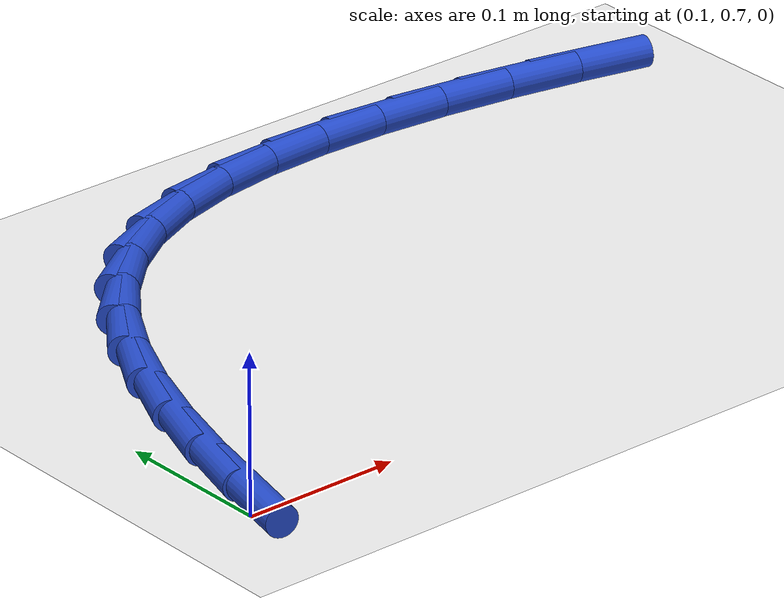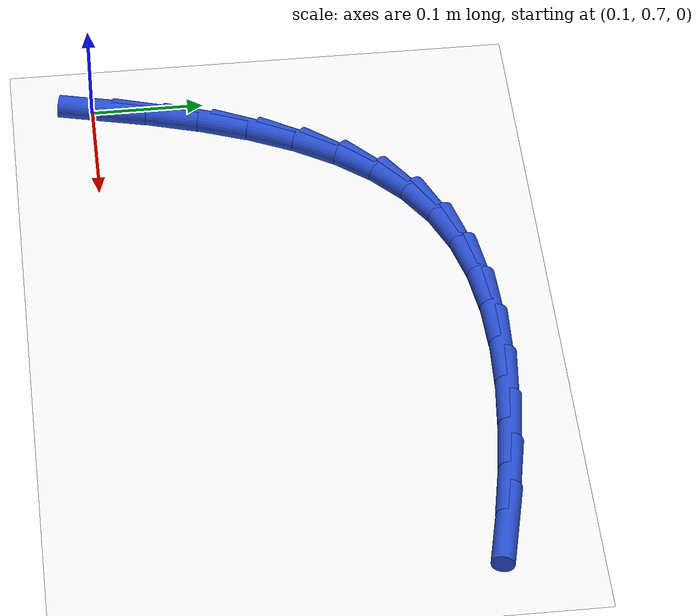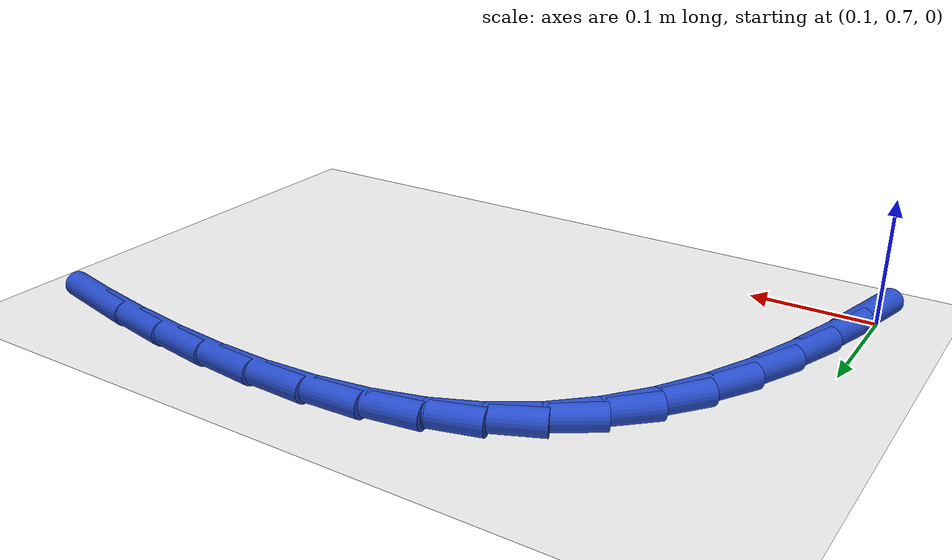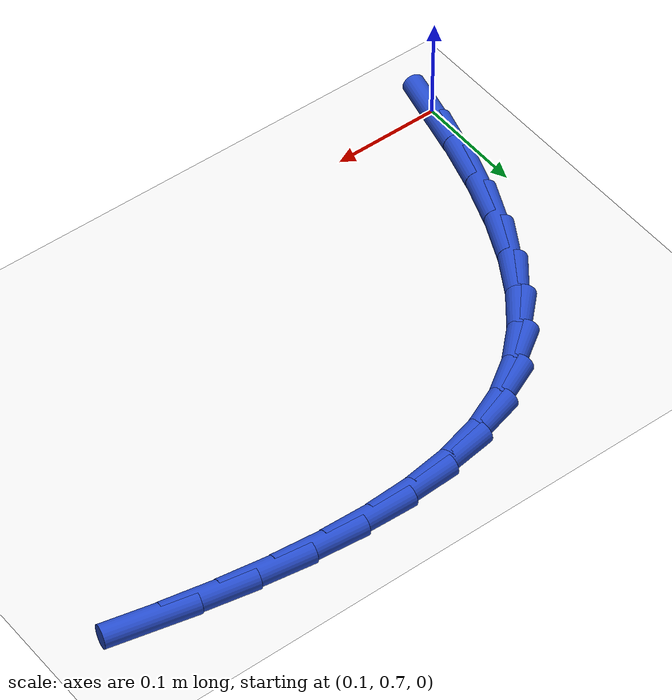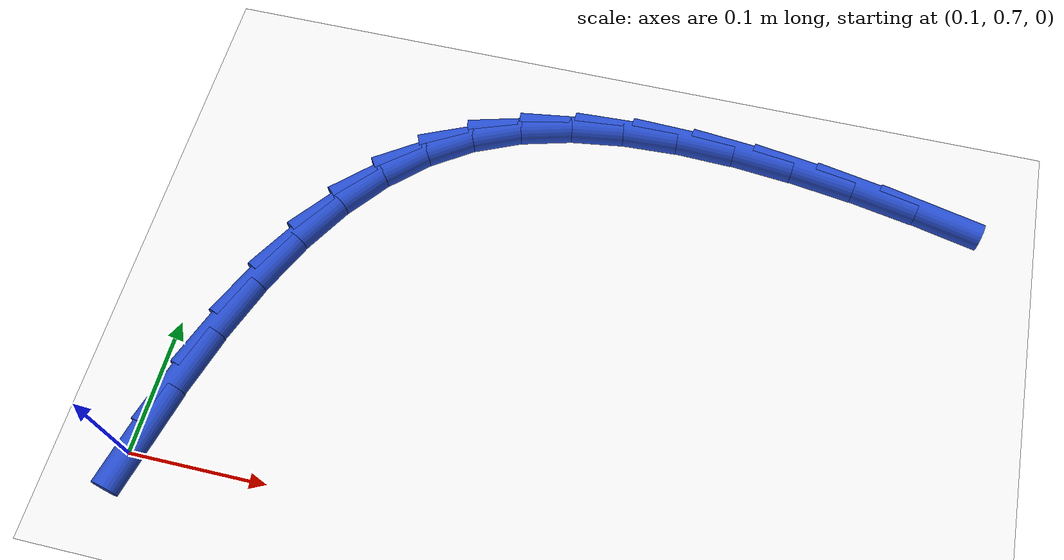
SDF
<sdf version="1.6">
 <world name="default">
  <model name="ground_plane">
   <static>1</static>
   <link name="link">
    <collision name="collision">
     <geometry><plane><normal>0 0 1</normal><size>100 100</size></plane></geometry>
     <surface><friction><ode><mu>100</mu><mu2>50</mu2></ode></friction></surface>
    </collision>
    <visual name="visual">
     <cast_shadows>0</cast_shadows>
     <geometry><plane><normal>0 0 1</normal><size>100 100</size></plane></geometry>
     <material>
      <script><uri>file://media/materials/scripts/gazebo.material</uri><name>Gazebo/WhiteGlow</name></script>
     </material>
    </visual>
   </link>
  </model>
  <model name="line">
   <link name="link_15">
    <pose>0.10701698676136147 0.7095645516522763 0.01 0 1.57 1.3400058128744678</pose>
    <collision name="collision">
     <geometry><cylinder><radius>0.01</radius><length>0.08</length></cylinder></geometry>
    </collision>
    <visual name="visual">
     <material>
      <script><name>Gazebo/Blue</name><uri>file://media/materials/scripts/gazebo.material</uri></script>
     </material>
     <geometry><cylinder><radius>0.01</radius><length>0.08</length></cylinder></geometry>
    </visual>
   </link>
   <link name="link_16">
    <pose>0.11796393734176075 0.7561518064817413 0.01 0 1.57 1.288814267215109</pose>
    <collision name="collision">
     <geometry><cylinder><radius>0.01</radius><length>0.08</length></cylinder></geometry>
    </collision>
    <visual name="visual">
     <material>
      <script><name>Gazebo/Blue</name><uri>file://media/materials/scripts/gazebo.material</uri></script>
     </material>
     <geometry><cylinder><radius>0.01</radius><length>0.08</length></cylinder></geometry>
    </visual>
   </link>
   <link name="link_17">
    <pose>0.13079736435165132 0.8004505997468553 0.01 0 1.57 1.2235269560680018</pose>
    <collision name="collision">
     <geometry><cylinder><radius>0.01</radius><length>0.08</length></cylinder></geometry>
    </collision>
    <visual name="visual">
     <material>
      <script><name>Gazebo/Blue</name><uri>file://media/materials/scripts/gazebo.material</uri></script>
     </material>
     <geometry><cylinder><radius>0.01</radius><length>0.08</length></cylinder></geometry>
    </visual>
   </link>
   <link name="link_18">
    <pose>0.1458368489259757 0.8420033579707691 0.01 0 1.57 1.1412834094080753</pose>
    <collision name="collision">
     <geometry><cylinder><radius>0.01</radius><length>0.08</length></cylinder></geometry>
    </collision>
    <visual name="visual">
     <material>
      <script><name>Gazebo/Blue</name><uri>file://media/materials/scripts/gazebo.material</uri></script>
     </material>
     <geometry><cylinder><radius>0.01</radius><length>0.08</length></cylinder></geometry>
    </visual>
   </link>
   <link name="link_19">
    <pose>0.16340197219967645 0.8803525076766332 0.01 0 1.57 1.038951125923565</pose>
    <collision name="collision">
     <geometry><cylinder><radius>0.01</radius><length>0.08</length></cylinder></geometry>
    </collision>
    <visual name="visual">
     <material>
      <script><name>Gazebo/Blue</name><uri>file://media/materials/scripts/gazebo.material</uri></script>
     </material>
     <geometry><cylinder><radius>0.01</radius><length>0.08</length></cylinder></geometry>
    </visual>
   </link>
   <link name="link_20">
    <pose>0.18381231530769612 0.915040475387598 0.01 0 1.57 0.9138612648375493</pose>
    <collision name="collision">
     <geometry><cylinder><radius>0.01</radius><length>0.08</length></cylinder></geometry>
    </collision>
    <visual name="visual">
     <material>
      <script><name>Gazebo/Blue</name><uri>file://media/materials/scripts/gazebo.material</uri></script>
     </material>
     <geometry><cylinder><radius>0.01</radius><length>0.08</length></cylinder></geometry>
    </visual>
   </link>
   <link name="link_21">
    <pose>0.2073874593849773 0.9456096876268147 0.01 0 1.57 0.765295415689402</pose>
    <collision name="collision">
     <geometry><cylinder><radius>0.01</radius><length>0.08</length></cylinder></geometry>
    </collision>
    <visual name="visual">
     <material>
      <script><name>Gazebo/Blue</name><uri>file://media/materials/scripts/gazebo.material</uri></script>
     </material>
     <geometry><cylinder><radius>0.01</radius><length>0.08</length></cylinder></geometry>
    </visual>
   </link>
   <link name="link_22">
    <pose>0.23444698556646254 0.9716025709174333 0.01 0 1.57 0.5965517758028859</pose>
    <collision name="collision">
     <geometry><cylinder><radius>0.01</radius><length>0.08</length></cylinder></geometry>
    </collision>
    <visual name="visual">
     <material>
      <script><name>Gazebo/Blue</name><uri>file://media/materials/scripts/gazebo.material</uri></script>
     </material>
     <geometry><cylinder><radius>0.01</radius><length>0.08</length></cylinder></geometry>
    </visual>
   </link>
   <link name="link_23">
    <pose>0.26531047498709426 0.9925615517826041 0.01 0 1.57 0.42097119625308793</pose>
    <collision name="collision">
     <geometry><cylinder><radius>0.01</radius><length>0.08</length></cylinder></geometry>
    </collision>
    <visual name="visual">
     <material>
      <script><name>Gazebo/Blue</name><uri>file://media/materials/scripts/gazebo.material</uri></script>
     </material>
     <geometry><cylinder><radius>0.01</radius><length>0.08</length></cylinder></geometry>
    </visual>
   </link>
   <link name="link_24">
    <pose>0.3001694410182661 1.0081692331149341 0.01 0 1.57 0.26814940204424326</pose>
    <collision name="collision">
     <geometry><cylinder><radius>0.01</radius><length>0.08</length></cylinder></geometry>
    </collision>
    <visual name="visual">
     <material>
      <script><name>Gazebo/Blue</name><uri>file://media/materials/scripts/gazebo.material</uri></script>
     </material>
     <geometry><cylinder><radius>0.01</radius><length>0.08</length></cylinder></geometry>
    </visual>
   </link>
   <link name="link_25">
    <pose>0.33863879639280187 1.0187393351304022 0.01 0 1.57 0.14403356371412587</pose>
    <collision name="collision">
     <geometry><cylinder><radius>0.01</radius><length>0.08</length></cylinder></geometry>
    </collision>
    <visual name="visual">
     <material>
      <script><name>Gazebo/Blue</name><uri>file://media/materials/scripts/gazebo.material</uri></script>
     </material>
     <geometry><cylinder><radius>0.01</radius><length>0.08</length></cylinder></geometry>
    </visual>
   </link>
   <link name="link_26">
    <pose>0.3801712516646629 1.0247631161851134 0.01 0 1.57 0.04466507645924687</pose>
    <collision name="collision">
     <geometry><cylinder><radius>0.01</radius><length>0.08</length></cylinder></geometry>
    </collision>
    <visual name="visual">
     <material>
      <script><name>Gazebo/Blue</name><uri>file://media/materials/scripts/gazebo.material</uri></script>
     </material>
     <geometry><cylinder><radius>0.01</radius><length>0.08</length></cylinder></geometry>
    </visual>
   </link>
   <link name="link_27">
    <pose>0.4242195085532895 1.0267318443049847 0.01 0 1.57 -0.034648645979585904</pose>
    <collision name="collision">
     <geometry><cylinder><radius>0.01</radius><length>0.08</length></cylinder></geometry>
    </collision>
    <visual name="visual">
     <material>
      <script><name>Gazebo/Blue</name><uri>file://media/materials/scripts/gazebo.material</uri></script>
     </material>
     <geometry><cylinder><radius>0.01</radius><length>0.08</length></cylinder></geometry>
    </visual>
   </link>
   <link name="link_28">
    <pose>0.470236268778122 1.0251367875159334 0.01 0 1.57 -0.09807751935325891</pose>
    <collision name="collision">
     <geometry><cylinder><radius>0.01</radius><length>0.08</length></cylinder></geometry>
    </collision>
    <visual name="visual">
     <material>
      <script><name>Gazebo/Blue</name><uri>file://media/materials/scripts/gazebo.material</uri></script>
     </material>
     <geometry><cylinder><radius>0.01</radius><length>0.08</length></cylinder></geometry>
    </visual>
   </link>
   <link name="link_29">
    <pose>0.5176742340586009 1.020469213843877 0.01 0 1.57 -0.1489312786633972</pose>
    <collision name="collision">
     <geometry><cylinder><radius>0.01</radius><length>0.08</length></cylinder></geometry>
    </collision>
    <visual name="visual">
     <material>
      <script><name>Gazebo/Blue</name><uri>file://media/materials/scripts/gazebo.material</uri></script>
     </material>
     <geometry><cylinder><radius>0.01</radius><length>0.08</length></cylinder></geometry>
    </visual>
   </link>
   <link name="link_30">
    <pose>0.5659861061141667 1.0132203913147317 0.01 0 1.57 -0.18969581710606048</pose>
    <collision name="collision">
     <geometry><cylinder><radius>0.01</radius><length>0.08</length></cylinder></geometry>
    </collision>
    <visual name="visual">
     <material>
      <script><name>Gazebo/Blue</name><uri>file://media/materials/scripts/gazebo.material</uri></script>
     </material>
     <geometry><cylinder><radius>0.01</radius><length>0.08</length></cylinder></geometry>
    </visual>
   </link>
   <link name="link_31">
    <pose>0.6146245866642596 1.003881587954415 0.01 0 1.57 -0.22216967657675998</pose>
    <collision name="collision">
     <geometry><cylinder><radius>0.01</radius><length>0.08</length></cylinder></geometry>
    </collision>
    <visual name="visual">
     <material>
      <script><name>Gazebo/Blue</name><uri>file://media/materials/scripts/gazebo.material</uri></script>
     </material>
     <geometry><cylinder><radius>0.01</radius><length>0.08</length></cylinder></geometry>
    </visual>
   </link>
  </model>
 </world>
</sdf>
